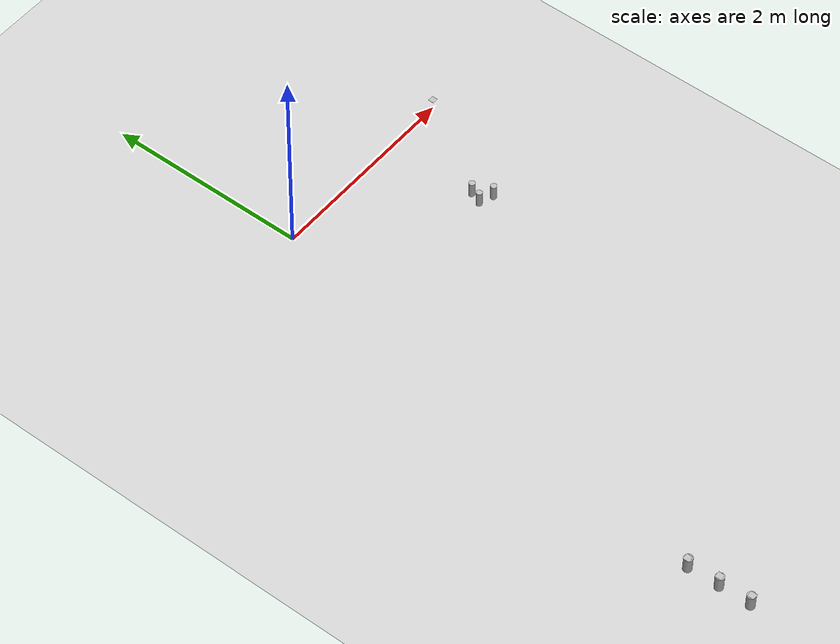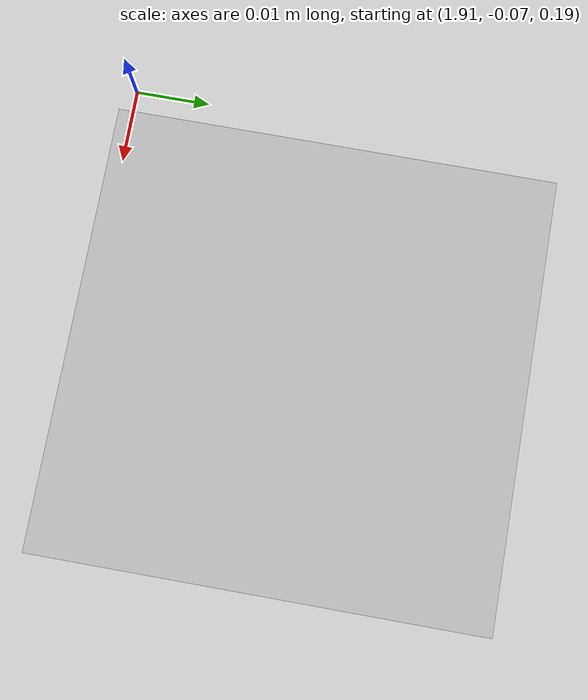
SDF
<sdf version="1.7">
 <world name="default">
  <plugin name="gazebo_ros_state" filename="libgazebo_ros_state.so">
   <ros><namespace>/gazebo</namespace></ros>
   <update_rate>1.0</update_rate>
  </plugin>
  <light name="sun" type="directional">
   <pose>0 0 10 0 -0 0</pose>
   <diffuse>0.8 0.8 0.8 1</diffuse>
   <specular>0.2 0.2 0.2 1</specular>
   <attenuation>
    <range>1000</range>
    <constant>0.9</constant>
    <linear>0.01</linear>
    <quadratic>0.001</quadratic>
   </attenuation>
   <direction>0 0.5 -0.9</direction>
   <spot><inner_angle>0</inner_angle><outer_angle>0</outer_angle><falloff>0</falloff></spot>
  </light>
  <light name="point_light" type="point">
   <pose>0 -0.377195 6.59868 0 -0 0</pose>
   <diffuse>0.784314 0.784314 0.784314 1</diffuse>
   <specular>0.0980392 0.0980392 0.0980392 1</specular>
   <attenuation>
    <range>50</range>
    <constant>0.8</constant>
    <linear>0</linear>
    <quadratic>0.001</quadratic>
   </attenuation>
   <cast_shadows>0</cast_shadows>
   <direction>0 0 -1</direction>
   <spot><inner_angle>0</inner_angle><outer_angle>0</outer_angle><falloff>0</falloff></spot>
  </light>
  <model name="ground_plane">
   <static>1</static>
   <link name="link">
    <collision name="collision">
     <geometry><plane><normal>0 0 1</normal><size>100 100</size></plane></geometry>
     <surface>
      <contact><collide_bitmask>65535</collide_bitmask></contact>
      <friction><ode><mu>100</mu><mu2>50</mu2></ode></friction>
     </surface>
    </collision>
    <visual name="visual">
     <cast_shadows>0</cast_shadows>
     <geometry><plane><normal>0 0 1</normal><size>100 100</size></plane></geometry>
     <material>
      <script><uri>file://media/materials/scripts/gazebo.material</uri><name>Gazebo/Grey</name></script>
     </material>
    </visual>
   </link>
  </model>
  <gravity>0 0 -9.8</gravity>
  <magnetic_field>6e-06 2.3e-05 -4.2e-05</magnetic_field>
  <atmosphere type="adiabatic"/>
  <physics type="ode">
   <max_step_size>0.001</max_step_size>
   <real_time_factor>1</real_time_factor>
   <real_time_update_rate>1000</real_time_update_rate>
  </physics>
  <scene><ambient>0.4 0.4 0.4 1</ambient><background>0.7 0.7 0.7 1</background><shadows>1</shadows></scene>
  <audio><device>default</device></audio>
  <spherical_coordinates>
   <surface_model>EARTH_WGS84</surface_model>
   <latitude_deg>0</latitude_deg>
   <longitude_deg>0</longitude_deg>
   <elevation>0</elevation>
   <heading_deg>0</heading_deg>
  </spherical_coordinates>
  <model name="biscuits_pack">
   <static>0</static>
   <link name="link">
    <inertial>
     <mass>0.25</mass>
     <inertia><ixx>0</ixx><ixy>0</ixy><ixz>0</ixz><iyy>0</iyy><iyz>0</iyz><izz>0</izz></inertia>
    </inertial>
    <collision name="collision">
     <geometry><cylinder><radius>0.029</radius><length>0.15</length></cylinder></geometry>
    </collision>
    <visual name="visual">
     <geometry><cylinder><radius>0.029</radius><length>0.15</length></cylinder></geometry>
     <material>
      <script>
       <uri>model://biscuits_pack/material/scripts</uri>
       <uri>model://biscuits_pack/material/textures</uri>
       <name>Custom/biscuits_pack</name>
      </script>
     </material>
    </visual>
    <velocity_decay><linear>0</linear><angular>0</angular></velocity_decay>
   </link>
   <pose>0.809184 -1.58808 1.05 -0.000133 -4.2e-05 0.000468</pose>
  </model>
  <model name="biscuits_pack_0">
   <static>0</static>
   <link name="link">
    <inertial>
     <mass>0.25</mass>
     <inertia><ixx>0</ixx><ixy>0</ixy><ixz>0</ixz><iyy>0</iyy><iyz>0</iyz><izz>0</izz></inertia>
    </inertial>
    <collision name="collision">
     <geometry><cylinder><radius>0.029</radius><length>0.15</length></cylinder></geometry>
    </collision>
    <visual name="visual">
     <geometry><cylinder><radius>0.029</radius><length>0.15</length></cylinder></geometry>
     <material>
      <script>
       <uri>model://biscuits_pack/material/scripts</uri>
       <uri>model://biscuits_pack/material/textures</uri>
       <name>Custom/biscuits_pack</name>
      </script>
     </material>
    </visual>
    <velocity_decay><linear>0</linear><angular>0</angular></velocity_decay>
   </link>
   <pose>0.719931 -1.4233 1.05001 -0.000433 -9.8e-05 -0.000124</pose>
  </model>
  <model name="biscuits_pack_1">
   <static>0</static>
   <link name="link">
    <inertial>
     <mass>0.25</mass>
     <inertia><ixx>0</ixx><ixy>0</ixy><ixz>0</ixz><iyy>0</iyy><iyz>0</iyz><izz>0</izz></inertia>
    </inertial>
    <collision name="collision">
     <geometry><cylinder><radius>0.029</radius><length>0.15</length></cylinder></geometry>
    </collision>
    <visual name="visual">
     <geometry><cylinder><radius>0.029</radius><length>0.15</length></cylinder></geometry>
     <material>
      <script>
       <uri>model://biscuits_pack/material/scripts</uri>
       <uri>model://biscuits_pack/material/textures</uri>
       <name>Custom/biscuits_pack</name>
      </script>
     </material>
    </visual>
    <velocity_decay><linear>0</linear><angular>0</angular></velocity_decay>
   </link>
   <pose>0.673555 -1.53785 1.05002 -0.000623 -3.4e-05 -0.000106</pose>
  </model>
  <model name="cocacola">
   <static>0</static>
   <link name="link">
    <inertial>
     <mass>0.25</mass>
     <inertia><ixx>0</ixx><ixy>0</ixy><ixz>0</ixz><iyy>0</iyy><iyz>0</iyz><izz>0</izz></inertia>
    </inertial>
    <collision name="collision">
     <pose>0 0 0.075 -3.14159 -0 0</pose>
     <geometry><cylinder><radius>0.04</radius><length>0.15</length></cylinder></geometry>
    </collision>
    <visual name="visual">
     <pose>0 0 0.075 -3.14159 -0 0</pose>
     <geometry><cylinder><radius>0.04</radius><length>0.15</length></cylinder></geometry>
     <material>
      <script>
       <uri>model://cocacola/material/scripts</uri>
       <uri>model://cocacola/material/textures</uri>
       <name>Custom/cocacola</name>
      </script>
     </material>
    </visual>
    <velocity_decay><linear>0</linear><angular>0</angular></velocity_decay>
   </link>
   <pose>-1.30822 -5.15757 0.972173 -6.2e-05 0.000124 -3.2e-05</pose>
  </model>
  <model name="cocacola_0">
   <static>0</static>
   <link name="link">
    <inertial>
     <mass>0.25</mass>
     <inertia><ixx>0</ixx><ixy>0</ixy><ixz>0</ixz><iyy>0</iyy><iyz>0</iyz><izz>0</izz></inertia>
    </inertial>
    <collision name="collision">
     <pose>0 0 0.075 -3.14159 -0 0</pose>
     <geometry><cylinder><radius>0.04</radius><length>0.15</length></cylinder></geometry>
    </collision>
    <visual name="visual">
     <pose>0 0 0.075 -3.14159 -0 0</pose>
     <geometry><cylinder><radius>0.04</radius><length>0.15</length></cylinder></geometry>
     <material>
      <script>
       <uri>model://cocacola/material/scripts</uri>
       <uri>model://cocacola/material/textures</uri>
       <name>Custom/cocacola</name>
      </script>
     </material>
    </visual>
    <velocity_decay><linear>0</linear><angular>0</angular></velocity_decay>
   </link>
   <pose>-1.29951 -5.45549 0.973127 -0.00037 -3.2e-05 -5e-06</pose>
  </model>
  <model name="cocacola_1">
   <static>0</static>
   <link name="link">
    <inertial>
     <mass>0.25</mass>
     <inertia><ixx>0</ixx><ixy>0</ixy><ixz>0</ixz><iyy>0</iyy><iyz>0</iyz><izz>0</izz></inertia>
    </inertial>
    <collision name="collision">
     <pose>0 0 0.075 -3.14159 -0 0</pose>
     <geometry><cylinder><radius>0.04</radius><length>0.15</length></cylinder></geometry>
    </collision>
    <visual name="visual">
     <pose>0 0 0.075 -3.14159 -0 0</pose>
     <geometry><cylinder><radius>0.04</radius><length>0.15</length></cylinder></geometry>
     <material>
      <script>
       <uri>model://cocacola/material/scripts</uri>
       <uri>model://cocacola/material/textures</uri>
       <name>Custom/cocacola</name>
      </script>
     </material>
    </visual>
    <velocity_decay><linear>0</linear><angular>0</angular></velocity_decay>
   </link>
   <pose>-1.2888 -5.75127 0.968014 -0.000117 0.000327 -1.4e-05</pose>
  </model>
  <model name="aruco_marker_250_6x6_1">
   <static>0</static>
   <link name="marker">
    <inertial>
     <mass>0.1</mass>
     <inertia><ixx>0</ixx><ixy>0</ixy><ixz>0</ixz><iyy>0</iyy><iyz>0</iyz><izz>0</izz></inertia>
    </inertial>
    <visual name="visual">
     <pose>0 0 0 0 -0 1.57</pose>
     <geometry><box><size>0.06 0.06 0.001</size></box></geometry>
     <material>
      <script>
       <uri>model://aruco_marker_250_6x6_1/material/scripts</uri>
       <uri>model://aruco_marker_250_6x6_1/material/textures</uri>
       <name>Aruco/aruco_marker_250_6x6_1</name>
      </script>
     </material>
    </visual>
    <collision name="collision"><geometry><box><size>0.06 0.06 0.001</size></box></geometry></collision>
    <self_collide>1</self_collide>
   </link>
   <pose>-1.31151 -5.15481 1.12266 0.000105 8.5e-05 -8e-06</pose>
  </model>
  <model name="aruco_marker_250_6x6_2">
   <static>0</static>
   <link name="marker">
    <inertial>
     <mass>0.1</mass>
     <inertia><ixx>0</ixx><ixy>0</ixy><ixz>0</ixz><iyy>0</iyy><iyz>0</iyz><izz>0</izz></inertia>
    </inertial>
    <visual name="visual">
     <pose>0 0 0 0 -0 1.57</pose>
     <geometry><box><size>0.06 0.06 0.001</size></box></geometry>
     <material>
      <script>
       <uri>model://aruco_marker_250_6x6_2/material/scripts</uri>
       <uri>model://aruco_marker_250_6x6_2/material/textures</uri>
       <name>Aruco/aruco_marker_250_6x6_2</name>
      </script>
     </material>
    </visual>
    <collision name="collision"><geometry><box><size>0.06 0.06 0.001</size></box></geometry></collision>
    <self_collide>1</self_collide>
   </link>
   <pose>-1.29642 -5.45179 1.12362 -0.00074 0.000235 -1e-06</pose>
  </model>
  <model name="aruco_marker_250_6x6_3">
   <static>0</static>
   <link name="marker">
    <inertial>
     <mass>0.1</mass>
     <inertia><ixx>0</ixx><ixy>0</ixy><ixz>0</ixz><iyy>0</iyy><iyz>0</iyz><izz>0</izz></inertia>
    </inertial>
    <visual name="visual">
     <pose>0 0 0 0 -0 1.57</pose>
     <geometry><box><size>0.06 0.06 0.001</size></box></geometry>
     <material>
      <script>
       <uri>model://aruco_marker_250_6x6_3/material/scripts</uri>
       <uri>model://aruco_marker_250_6x6_3/material/textures</uri>
       <name>Aruco/aruco_marker_250_6x6_3</name>
      </script>
     </material>
    </visual>
    <collision name="collision"><geometry><box><size>0.06 0.06 0.001</size></box></geometry></collision>
    <self_collide>1</self_collide>
   </link>
   <pose>-1.28596 -5.75667 1.11851 0.000235 0.000668 7e-06</pose>
  </model>
  <model name="aruco_marker_250_6x6_4">
   <static>0</static>
   <link name="marker">
    <inertial>
     <mass>0.1</mass>
     <inertia><ixx>0</ixx><ixy>0</ixy><ixz>0</ixz><iyy>0</iyy><iyz>0</iyz><izz>0</izz></inertia>
    </inertial>
    <visual name="visual">
     <pose>0 0 0 0 -0 1.57</pose>
     <geometry><box><size>0.06 0.06 0.001</size></box></geometry>
     <material>
      <script>
       <uri>model://aruco_marker_250_6x6_4/material/scripts</uri>
       <uri>model://aruco_marker_250_6x6_4/material/textures</uri>
       <name>Aruco/aruco_marker_250_6x6_4</name>
      </script>
     </material>
    </visual>
    <collision name="collision"><geometry><box><size>0.06 0.06 0.001</size></box></geometry></collision>
    <self_collide>1</self_collide>
   </link>
   <pose>1.94316 -0.041802 0.190369 4.8e-05 0.002264 4.1e-05</pose>
  </model>
 </world>
</sdf>
